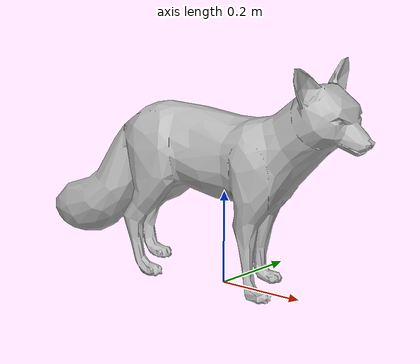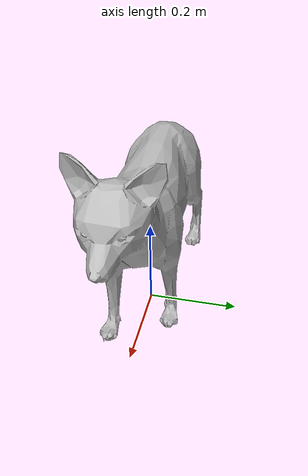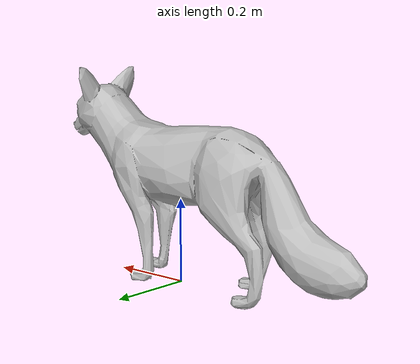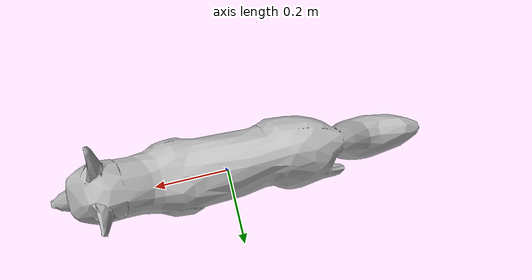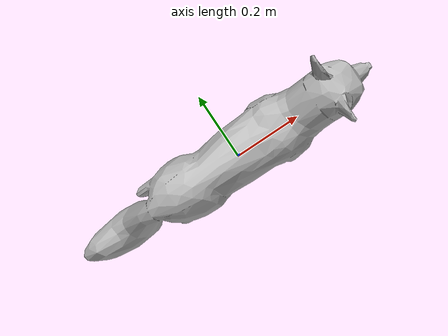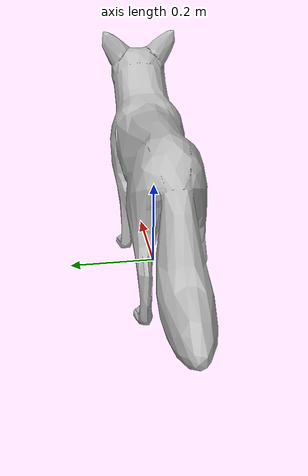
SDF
<?xml version="1.0" ?>
<sdf version="1.6">
  <model name="fox">
    <static>true</static>
    <link name="body">
      <pose>0 0 0 0 0 0</pose>
      <visual name="visual">
        <geometry>
          <mesh>
            <uri>model://fox/meshes/fox.obj</uri>
            <scale>1.2 1.2 1.2</scale>
          </mesh>
        </geometry>
      </visual>
      <collision name="collision">
        <geometry>
          <mesh>
            <uri>model://fox/meshes/fox.obj</uri>
            <scale>1.2 1.2 1.2</scale>
          </mesh>
        </geometry>
      </collision>
    </link>
  </model>
</sdf>
